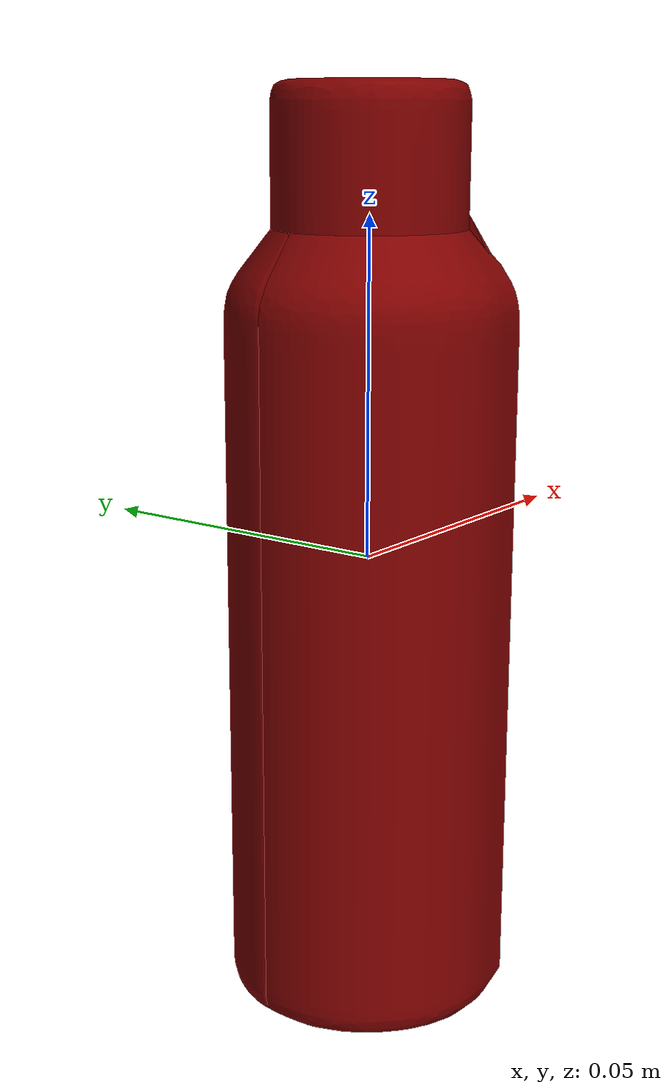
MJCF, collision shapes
<?xml version='1.0' encoding='utf-8'?>
<mujoco model="water_bottle_29">
  <asset>
    <mesh file="visual/model_normalized_0.obj" name="model_normalized_0_vis" scale="0.135 0.135 0.135" refquat="1.0 0.0 0.0 0.0" />
    <mesh file="visual/model_normalized_1.obj" name="model_normalized_1_vis" scale="0.135 0.135 0.135" refquat="1.0 0.0 0.0 0.0" />
    <mesh file="visual/model_normalized_2.obj" name="model_normalized_2_vis" scale="0.135 0.135 0.135" refquat="1.0 0.0 0.0 0.0" />
    <texture type="2d" name="image0" file="visual/image0.png" />
    <texture type="2d" name="image6" file="visual/image6.png" />
    <texture type="2d" name="image3" file="visual/image3.png" />
    <material name="Water_Bottle_Lid" texture="image0" specular="0.5" shininess="0.25" />
    <material name="Water_Bottle_Metal_Part" texture="image6" specular="0.5" shininess="0.25" />
    <material name="Water_Bottle_Yellow_Part" texture="image3" specular="0.5" shininess="0.25" />
    <mesh file="collision/collision_mesh_collision_0.obj" name="water_collision_mesh_0" scale="0.135 0.135 0.135" refquat="1.0 0.0 0.0 0.0" />
    <mesh file="collision/collision_mesh_collision_1.obj" name="water_collision_mesh_1" scale="0.135 0.135 0.135" refquat="1.0 0.0 0.0 0.0" />
    <mesh file="collision/collision_mesh_collision_2.obj" name="water_collision_mesh_2" scale="0.135 0.135 0.135" refquat="1.0 0.0 0.0 0.0" />
    <mesh file="collision/collision_mesh_collision_3.obj" name="water_collision_mesh_3" scale="0.135 0.135 0.135" refquat="1.0 0.0 0.0 0.0" />
    </asset>
  <default>
    <default class="region">
      <geom group="1" conaffinity="0" contype="0" rgba="0 1 0 0" />
      </default>
    <default class="collision">
      <geom group="0" rgba="0.5 0 0 0.5" density="1000.0" />
      </default>
    </default>
  <worldbody>
    <body>
      <body name="object">
        <geom solimp="0.998 0.998 0.001" solref="0.001 1" density="100" friction="0.95 0.3 0.1" type="mesh" mesh="model_normalized_0_vis" conaffinity="0" contype="0" group="1" material="Water_Bottle_Metal_Part" />
        <geom solimp="0.998 0.998 0.001" solref="0.001 1" density="100" friction="0.95 0.3 0.1" type="mesh" mesh="model_normalized_1_vis" conaffinity="0" contype="0" group="1" material="Water_Bottle_Yellow_Part" />
        <geom solimp="0.998 0.998 0.001" solref="0.001 1" density="100" friction="0.95 0.3 0.1" type="mesh" mesh="model_normalized_2_vis" conaffinity="0" contype="0" group="1" material="Water_Bottle_Lid" />
        <geom class="region" name="reg_bbox" type="box" pos="5.293350000000086e-05 1.6220249999999923e-05 -1.1475000005756186e-08" size="0.020006654400000004 0.020039100299999998 0.067499988525" />
        <geom mesh="water_collision_mesh_0" type="mesh" class="collision" />
        <geom mesh="water_collision_mesh_1" type="mesh" class="collision" />
        <geom mesh="water_collision_mesh_2" type="mesh" class="collision" />
        <geom mesh="water_collision_mesh_3" type="mesh" class="collision" />
        </body>
      </body>
    </worldbody>
  </mujoco>
